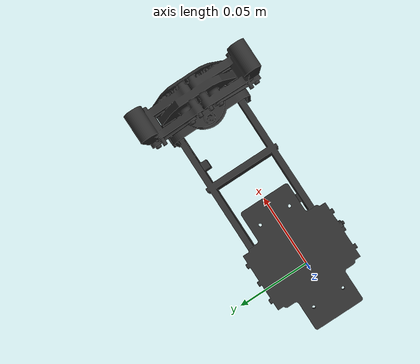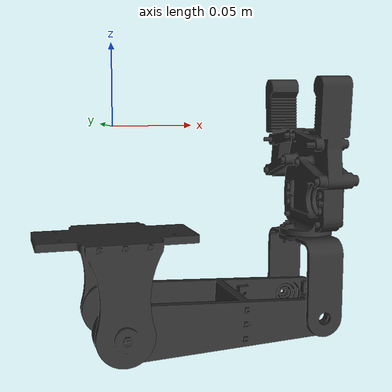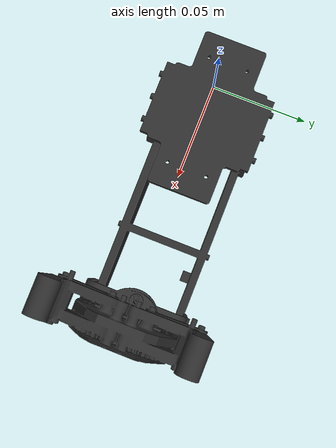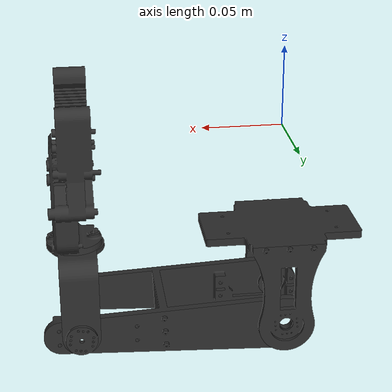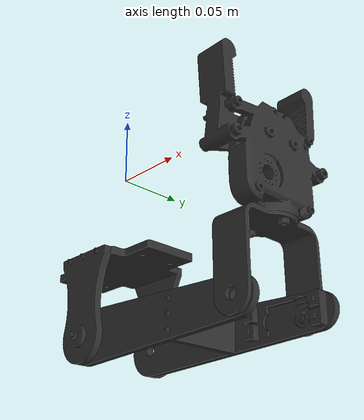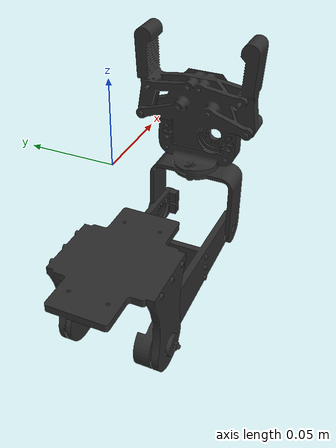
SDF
<?xml version="1.0" encoding="UTF-8"?>
<sdf version='1.9'>
  <model name='arm'>
    <self_collide>false</self_collide>
    <static>false</static>

    <!-- Arm mount point -->
    <link name="arm_base_link">
      <pose>0 0 -0.0667 0 0 0</pose>
      <inertial>
        <pose>0.0 -0.0026 -0.01845 0 0 0</pose>
        <mass>0.049</mass>
        <inertia>
          <ixx>5.575983e-05</ixx>
          <ixy>0.0</ixy>
          <ixz>0.0</ixz>
          <iyy>4.514122e-05</iyy>
          <iyz>3.63852e-06</iyz>
          <izz>5.104692e-05</izz>
        </inertia>
      </inertial>
      <visual name="arm_base_visual">
        <geometry>
          <mesh>
            <scale>0.001 0.001 0.001</scale>
            <uri>package://ardupilot_gazebo/models/arm/meshes/arm_base.STL</uri>
          </mesh>
        </geometry>
        <material>
          <ambient>.175 .175 .175 1.0</ambient>
          <diffuse>.175 .175 .175 1.0</diffuse>
          <specular>.175 .175 .175 1.0</specular>
        </material>
      </visual>
    </link>

    <!-- Arm link shoulder -->
    <link name="arm_shoulder_link">
      <pose>0 0 -0.1237 0 0 0</pose>
      <inertial>
        <pose>0.0619 0.00051 -0.01092 0 0 0</pose>
        <mass>0.02114</mass>
        <inertia>
          <ixx>5.496067e-05</ixx>
          <ixy>1.836256e-05</ixy>
          <ixz>-3.140578e-05</ixz>
          <iyy>1.9457412e-04</iyy>
          <iyz>-3.23771e-06</iyz>
          <izz>2.2765237e-04</izz>
        </inertia>
      </inertial>
      <visual name='arm_shoulder_visual'>
        <geometry>
          <mesh>
            <scale>0.001 0.001 0.001</scale>
            <uri>package://ardupilot_gazebo/models/arm/meshes/arm_shoulder.STL</uri>
          </mesh>
        </geometry>
        <material>
          <ambient>.175 .175 .175 1.0</ambient>
          <diffuse>.175 .175 .175 1.0</diffuse>
          <specular>.175 .175 .175 1.0</specular>
        </material>
      </visual>
    </link>

    <!-- Joint 1: shoulder (pitch axis) -->
    <joint name="shoulder_joint" type="revolute">
      <parent>arm_base_link</parent>
      <child>arm_shoulder_link</child>
      <pose>0 0 0 0 0 0</pose>
      <axis>
        <xyz>0 1 0</xyz>
        <limit><lower>0</lower><upper>4.71239</upper></limit>
        <dynamics>
          <damping>0.1</damping>
          <friction>0.05</friction>
        </dynamics>
      </axis>
    </joint>

    <!-- Arm link elbow
         Pitch offset -π/2 so CAD rest pose occurs at joint = π/2 (mission 90°),
         aligning Gazebo joint angle with mission 0°…270°. -->
    <link name="arm_elbow_link">
      <pose>0.13 0 -0.1237 0 -1.5708 0</pose>
      <inertial>
        <pose>0.08459 -0.00001 -0.01509 0 0 0</pose>
        <mass>0.05235</mass>
        <inertia>
          <ixx>6.786067e-05</ixx>
          <ixy>1.53393e-06</ixy>
          <ixz>-1.658904e-05</ixz>
          <iyy>1.1011205e-04</iyy>
          <iyz>-2.2074e-07</iyz>
          <izz>1.5666023e-04</izz>
        </inertia>
      </inertial>
      <visual name='arm_elbow_visual'>
        <geometry>
          <mesh>
            <scale>0.001 0.001 0.001</scale>
            <uri>package://ardupilot_gazebo/models/arm/meshes/arm_elbow.STL</uri>
          </mesh>
        </geometry>
        <material>
          <ambient>.175 .175 .175 1.0</ambient>
          <diffuse>.175 .175 .175 1.0</diffuse>
          <specular>.175 .175 .175 1.0</specular>
        </material>
      </visual>
    </link>

    <!-- Joint 2: elbow — same angle convention as shoulder / mission -->
    <joint name="elbow_joint" type="revolute">
      <parent>arm_shoulder_link</parent>
      <child>arm_elbow_link</child>
      <pose>0 0 0 0 0 0</pose>
      <axis>
        <xyz>0 1 0</xyz>
        <limit><lower>0</lower><upper>4.71239</upper></limit>
        <dynamics>
          <damping>0.1</damping>
          <friction>0.05</friction>
        </dynamics>
      </axis>
    </joint>

  </model>
</sdf>
